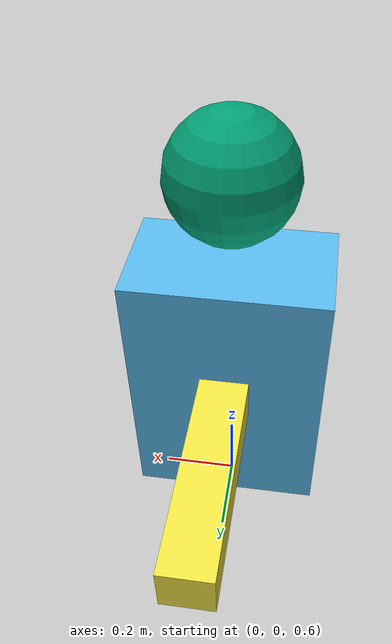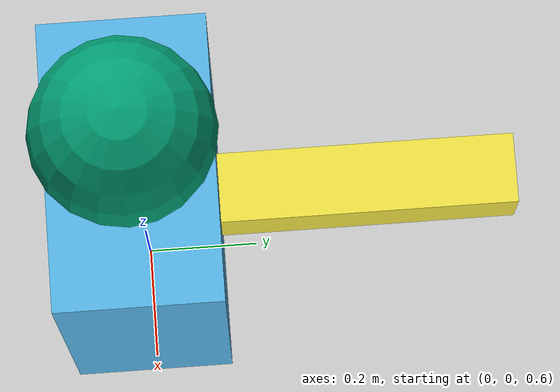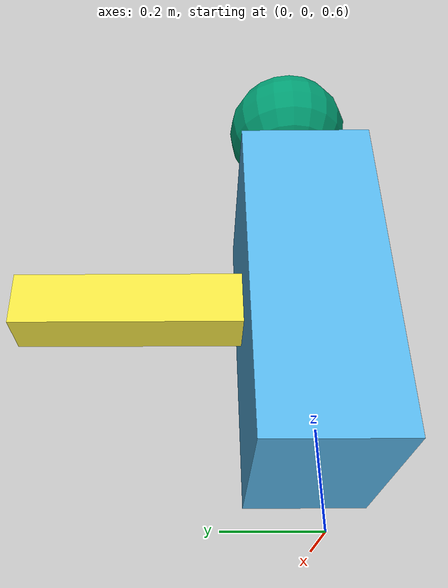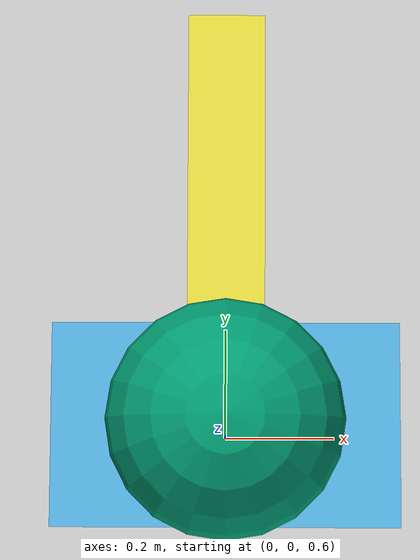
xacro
<?xml version="1.0"?>
<robot xmlns:xacro="http://www.ros.org/wiki/xacro" name="embodied_demo">
  <xacro:property name="shoulder_limit" value="0.8"/>
  <link name="world"/>
  <link name="torso">
    <inertial><origin xyz="0 0 0"/><mass value="8"/>
      <inertia ixx="0.15" ixy="0" ixz="0" iyy="0.15" iyz="0" izz="0.12"/>
    </inertial>
    <visual><geometry><box size="0.48 0.28 0.7"/></geometry></visual>
    <collision><geometry><box size="0.48 0.28 0.7"/></geometry></collision>
  </link>
  <joint name="ground_anchor" type="fixed">
    <parent link="world"/><child link="torso"/><origin xyz="0 0 1.05"/>
  </joint>
  <link name="head">
    <inertial><mass value="1"/>
      <inertia ixx="0.01" ixy="0" ixz="0" iyy="0.01" iyz="0" izz="0.01"/>
    </inertial>
    <visual><geometry><sphere radius="0.15"/></geometry></visual>
    <collision><geometry><sphere radius="0.15"/></geometry></collision>
  </link>
  <joint name="neck" type="fixed">
    <parent link="torso"/><child link="head"/><origin xyz="0 0 0.57"/>
  </joint>
  <link name="left_arm">
    <inertial><origin xyz="0 0.22 -0.02"/><mass value="0.2"/>
      <inertia ixx="0.004" ixy="0" ixz="0" iyy="0.004" iyz="0" izz="0.002"/>
    </inertial>
    <visual><origin xyz="0 0.22 -0.02"/><geometry><box size="0.12 0.52 0.12"/></geometry></visual>
    <collision><origin xyz="0 0.22 -0.02"/><geometry><box size="0.12 0.52 0.12"/></geometry></collision>
  </link>
  <joint name="left_shoulder" type="revolute">
    <parent link="torso"/><child link="left_arm"/><origin xyz="0 0.17 0.05"/>
    <axis xyz="1 0 0"/>
    <limit lower="-${shoulder_limit}" upper="${shoulder_limit}" effort="100" velocity="1.0"/>
  </joint>
</robot>
